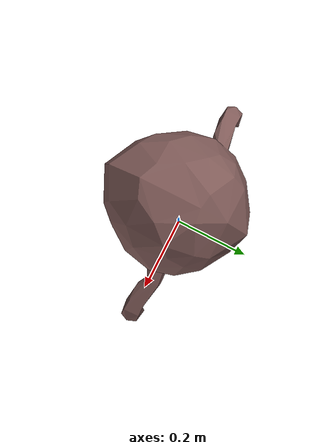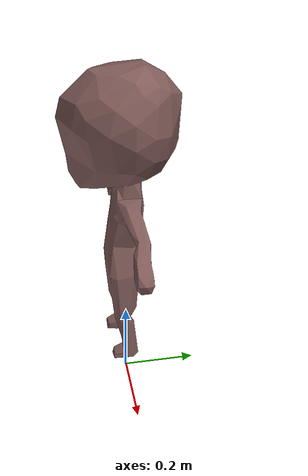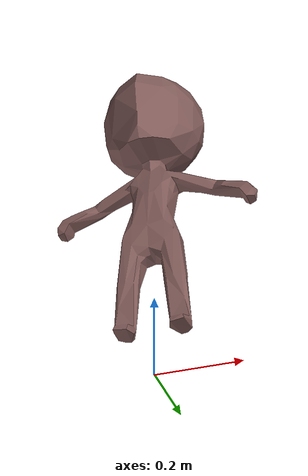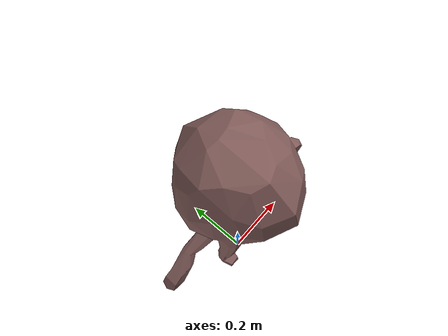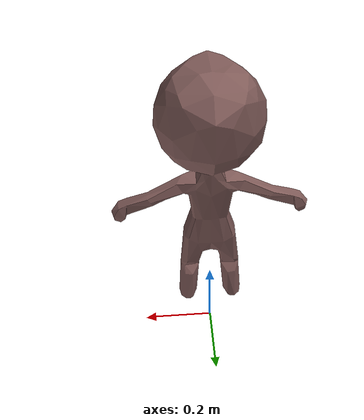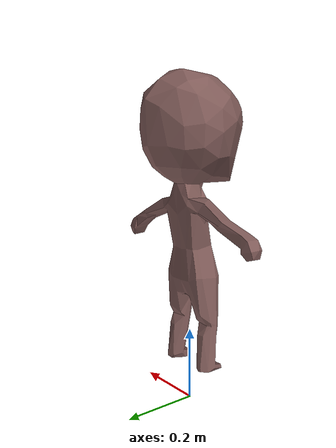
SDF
<?xml version="1.0" ?>
<sdf version="1.5">
  <model name="victim_B_cold">
    <static>true</static>
    <self_collide>false</self_collide>
    <pose>0 0 0.1 0 0 0</pose>
    <link name="link">
      <collision name="collision">
        <geometry>
          <mesh>
            <uri>model://victim_B_cold/victim_B.dae</uri>
            <scale>1 1 1</scale>
          </mesh>
        </geometry>
      </collision>
      <visual name="visual">
        <geometry>
          <mesh>
            <uri>model://victim_B_cold/victim_B.dae</uri>
            <scale>1 1 1</scale>
          </mesh>
        </geometry>
        <cast_shadows>false</cast_shadows>
        <!-- PINK -->
        <material>
          <emissive>0.5 0.355 0.345 1</emissive>
          <ambient>0.5 0.355 0.345 1</ambient>
          <diffuse>0.5 0.355 0.345 1</diffuse>
          <specular>0 0 0 0</specular>
        </material> -->
      </visual>
    </link>
  </model>
</sdf>
